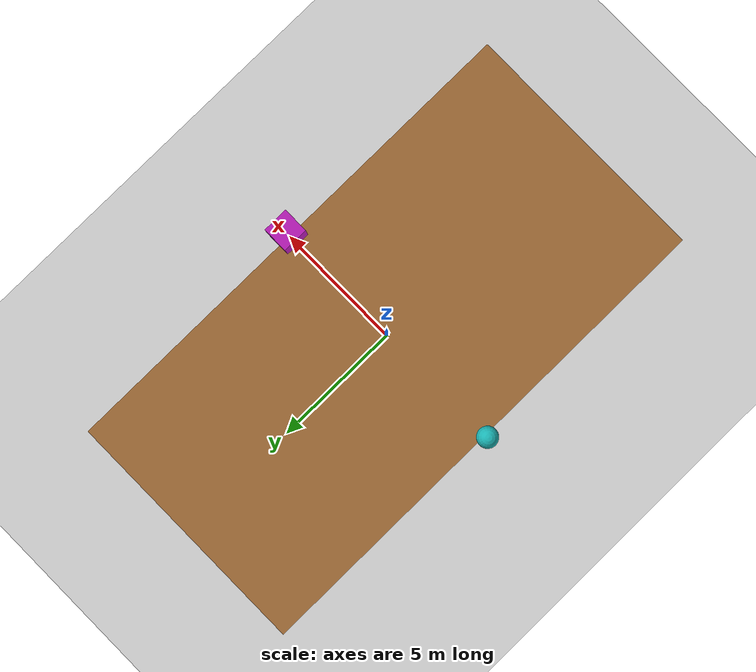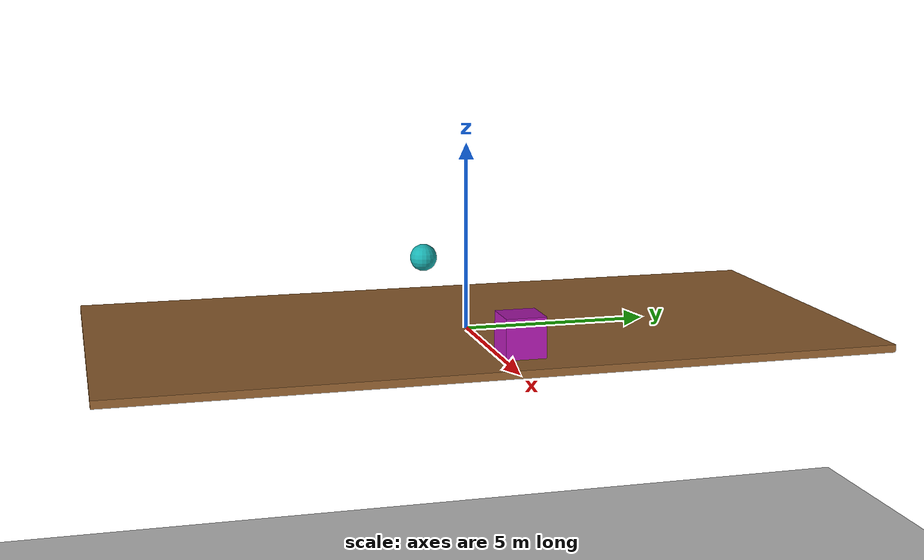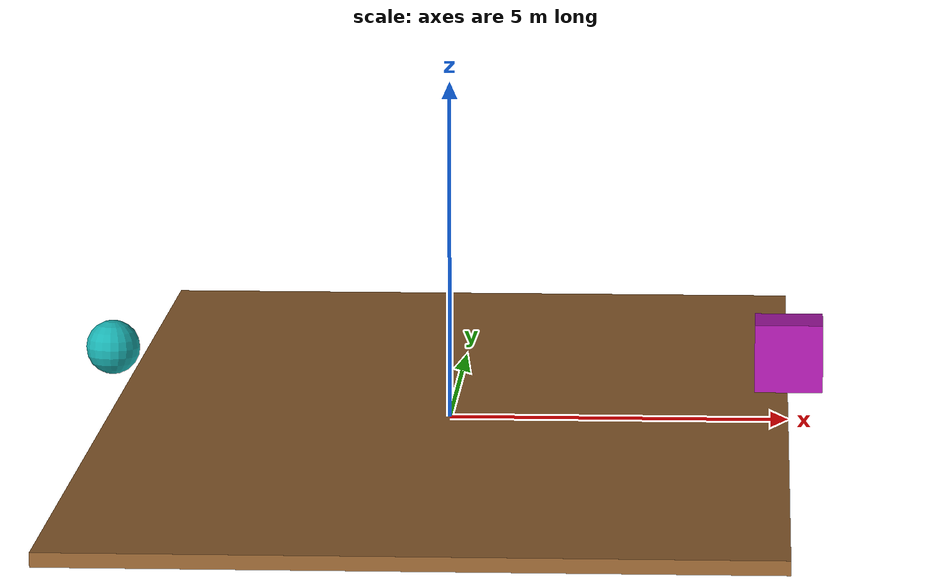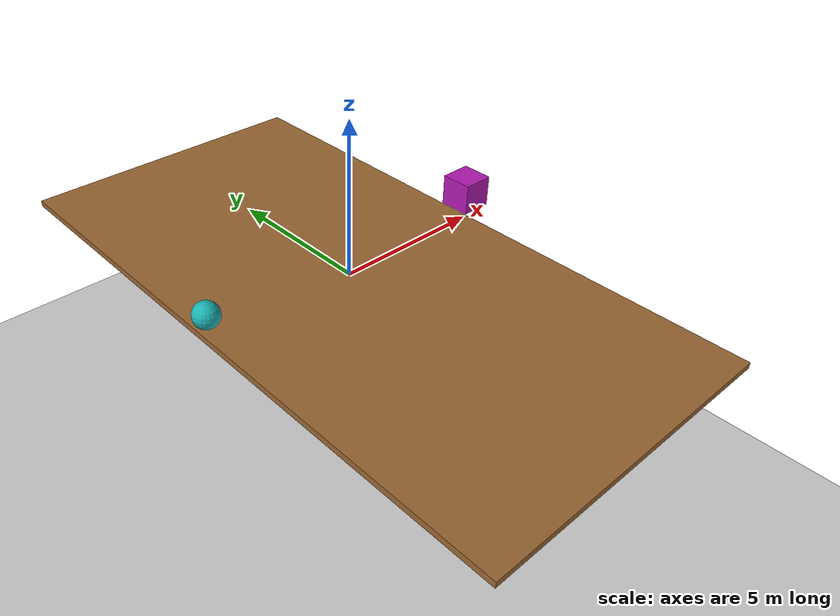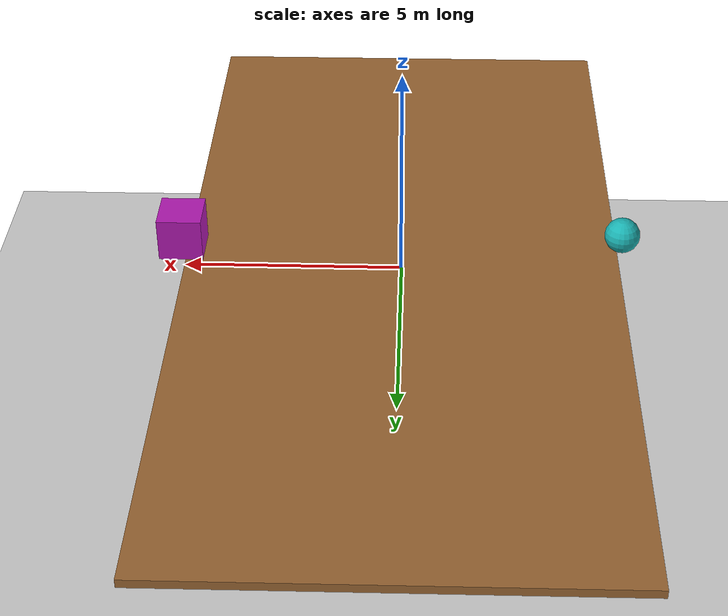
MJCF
<mujoco model="22.1">
  <!-- Set gravity -->
  <option gravity="0 0 -9.81"/>

  <!-- Worldbody contains all bodies -->
  <worldbody>

    <!-- Ramp Body (Using a box instead of a mesh) -->
    <body name="curved_ramp" pos="0 0 0">
      <geom type="box" size="5 10 0.1" rgba="0.6 0.4 0.2 1" friction="1.2 1.2 1.2"/>
    </body>

    <!-- Surface Body -->
    <body name="surface" pos="-10 0 -10">
      <geom type="plane" size="25 25 0.1" rgba="0.8 0.8 0.8 1" friction="1 1 1"/>
    </body>

    <!-- Sphere Body -->
    <body name="sphere" pos="-5 0 1">
      <geom type="sphere" size="0.4" density="1" friction="0.8 0.8 0.8" rgba="0.1 0.7 0.7 1"/>
      <joint name="sphere_joint" type="free"/>
    </body>

    <!-- Cube Body -->
    <body name="cube" pos="5 0 1">
      <geom type="box" size="0.5 0.5 0.5" density="1" friction="0 0 0" rgba="0.7 0.1 0.7 1"/>
      <joint name="cube_joint" type="free"/>
    </body>

  </worldbody>

</mujoco>
